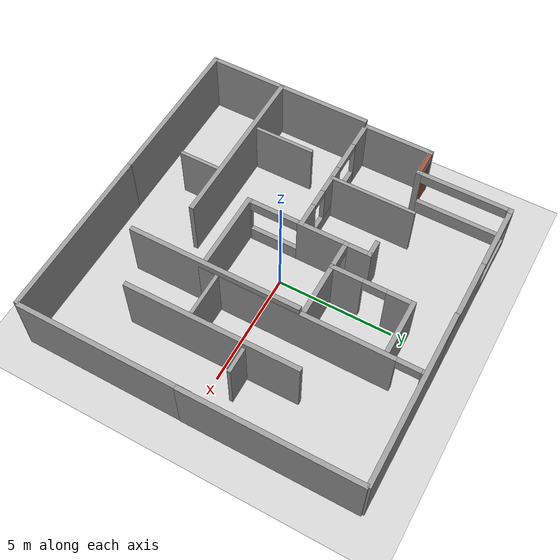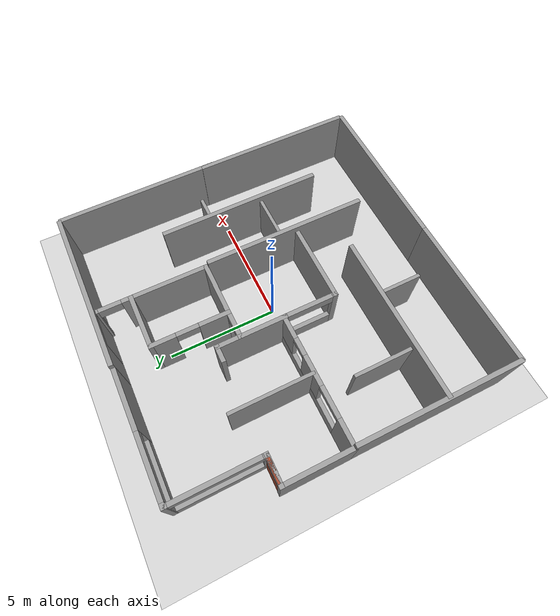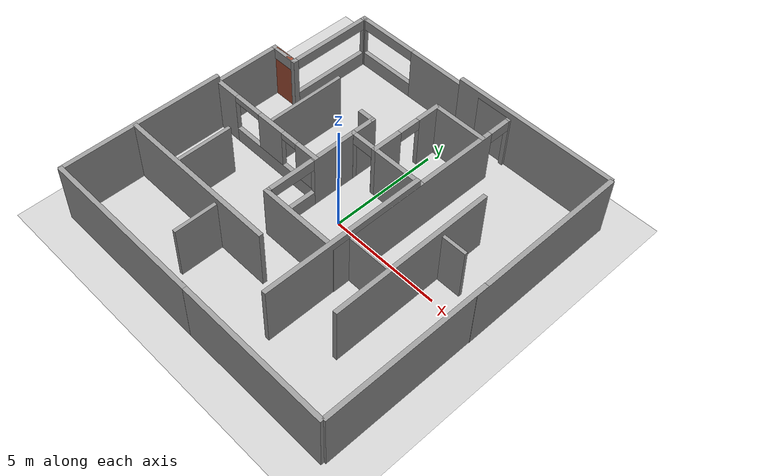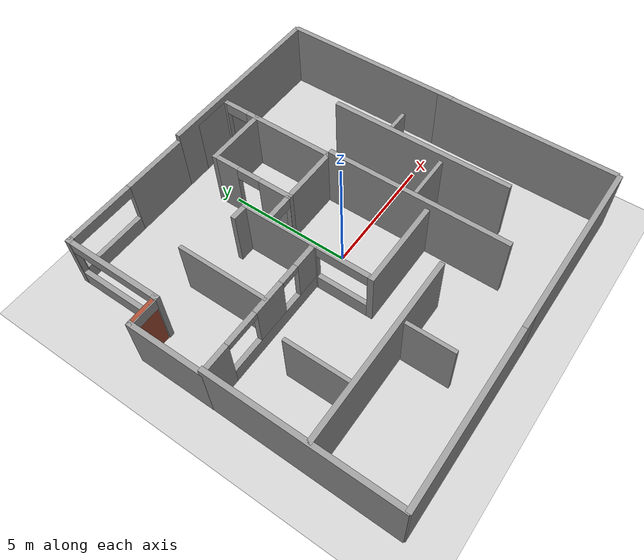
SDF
<sdf version="1.6">
 <world name="GrannyAnnie">
  <light name="sun" type="directional">
   <pose>0 0 10 0 -0 0</pose>
   <diffuse>0.8 0.8 0.8 1</diffuse>
   <specular>0.2 0.2 0.2 1</specular>
   <attenuation>
    <range>1000</range>
    <constant>0.9</constant>
    <linear>0.01</linear>
    <quadratic>0.001</quadratic>
   </attenuation>
   <direction>-0.5 0.1 -0.9</direction>
  </light>
  <model name="ground_plane">
   <static>1</static>
   <link name="link">
    <collision name="collision">
     <geometry><plane><normal>0 0 1</normal><size>100 100</size></plane></geometry>
     <surface><friction><ode><mu>100</mu><mu2>50</mu2></ode></friction></surface>
    </collision>
    <visual name="visual">
     <cast_shadows>0</cast_shadows>
     <geometry><plane><normal>0 0 1</normal><size>100 100</size></plane></geometry>
     <material>
      <script><uri>file://media/materials/scripts/gazebo.material</uri><name>Gazebo/Grey</name></script>
     </material>
    </visual>
    <velocity_decay><linear>0</linear><angular>0</angular></velocity_decay>
   </link>
  </model>
  <physics name="default_physics" default="0" type="ode">
   <max_step_size>0.01</max_step_size>
   <real_time_factor>1</real_time_factor>
   <real_time_update_rate>100</real_time_update_rate>
  </physics>
  <scene><ambient>0.4 0.4 0.4 1</ambient><background>0.7 0.7 0.7 1</background><shadows>1</shadows></scene>
  <model name="RoCKIn@Home">
   <link name="Wall_12">
    <collision name="Wall_12_Collision">
     <geometry><box><size>2.6 0.2 2.5</size></box></geometry>
     <pose>0 0 1.25 0 -0 0</pose>
    </collision>
    <visual name="Wall_12_Visual">
     <pose>0 0 1.25 0 -0 0</pose>
     <geometry><box><size>2.6 0.2 2.5</size></box></geometry>
     <material>
      <script><uri>file://media/materials/scripts/gazebo.material</uri><name>Gazebo/Grey</name></script>
     </material>
    </visual>
    <velocity_decay><linear>0</linear><angular>0</angular></velocity_decay>
    <pose>7.8 1.205 0 0 -0 1.5708</pose>
   </link>
   <link name="Wall_14">
    <pose>6.0996 2.4048 0 0 -0 3.14159</pose>
    <visual name="Wall_14_Visual_0">
     <pose>-1.20789 0 1.25 0 -0 0</pose>
     <geometry><box><size>1.18422 0.2 2.5</size></box></geometry>
     <material>
      <script><uri>file://media/materials/scripts/gazebo.material</uri><name>Gazebo/Grey</name></script>
     </material>
    </visual>
    <collision name="Wall_14_Collision_0">
     <geometry><box><size>1.18422 0.2 2.5</size></box></geometry>
     <pose>-1.20789 0 1.25 0 -0 0</pose>
    </collision>
    <visual name="Wall_14_Visual_1">
     <pose>1.09211 0 1.25 0 -0 0</pose>
     <geometry><box><size>1.41579 0.2 2.5</size></box></geometry>
     <material>
      <script><uri>file://media/materials/scripts/gazebo.material</uri><name>Gazebo/Grey</name></script>
     </material>
    </visual>
    <collision name="Wall_14_Collision_1">
     <geometry><box><size>1.41579 0.2 2.5</size></box></geometry>
     <pose>1.09211 0 1.25 0 -0 0</pose>
    </collision>
    <visual name="Wall_14_Visual_2">
     <pose>-0.115785 0 2.25 0 -0 0</pose>
     <geometry><box><size>1 0.2 0.5</size></box></geometry>
     <material>
      <script><uri>file://media/materials/scripts/gazebo.material</uri><name>Gazebo/Grey</name></script>
     </material>
    </visual>
    <collision name="Wall_14_Collision_2">
     <geometry><box><size>1 0.2 0.5</size></box></geometry>
     <pose>-0.115785 0 2.25 0 -0 0</pose>
    </collision>
    <velocity_decay><linear>0</linear><angular>0</angular></velocity_decay>
   </link>
   <link name="Wall_16">
    <collision name="Wall_16_Collision">
     <geometry><box><size>2.60492 0.2 2.5</size></box></geometry>
     <pose>0 0 1.25 0 -0 0</pose>
    </collision>
    <visual name="Wall_16_Visual">
     <pose>0 0 1.25 0 -0 0</pose>
     <geometry><box><size>2.60492 0.2 2.5</size></box></geometry>
     <material>
      <script><uri>file://media/materials/scripts/gazebo.material</uri><name>Gazebo/Grey</name></script>
     </material>
    </visual>
    <velocity_decay><linear>0</linear><angular>0</angular></velocity_decay>
    <pose>4.39903 1.20277 0 0 -0 1.5708</pose>
   </link>
   <link name="Wall_18">
    <collision name="Wall_18_Collision">
     <geometry><box><size>3.8 0.2 2.5</size></box></geometry>
     <pose>0 0 1.25 0 -0 0</pose>
    </collision>
    <visual name="Wall_18_Visual">
     <pose>0 0 1.25 0 -0 0</pose>
     <geometry><box><size>3.8 0.2 2.5</size></box></geometry>
     <material>
      <script><uri>file://media/materials/scripts/gazebo.material</uri><name>Gazebo/Grey</name></script>
     </material>
    </visual>
    <velocity_decay><linear>0</linear><angular>0</angular></velocity_decay>
    <pose>0.024876 1.80003 0 0 -0 1.5708</pose>
   </link>
   <link name="Wall_2">
    <pose>4.7266 0 0 0 -0 0</pose>
    <visual name="Wall_2_Visual_0">
     <pose>-0.649274 0 1.25 0 -0 0</pose>
     <geometry><box><size>8.30145 0.2 2.5</size></box></geometry>
     <material>
      <script><uri>file://media/materials/scripts/gazebo.material</uri><name>Gazebo/Grey</name></script>
     </material>
    </visual>
    <collision name="Wall_2_Collision_0">
     <geometry><box><size>8.30145 0.2 2.5</size></box></geometry>
     <pose>-0.649274 0 1.25 0 -0 0</pose>
    </collision>
    <visual name="Wall_2_Visual_1">
     <pose>4.65073 0 1.25 0 -0 0</pose>
     <geometry><box><size>0.298547 0.2 2.5</size></box></geometry>
     <material>
      <script><uri>file://media/materials/scripts/gazebo.material</uri><name>Gazebo/Grey</name></script>
     </material>
    </visual>
    <collision name="Wall_2_Collision_1">
     <geometry><box><size>0.298547 0.2 2.5</size></box></geometry>
     <pose>4.65073 0 1.25 0 -0 0</pose>
    </collision>
    <visual name="Wall_2_Visual_2">
     <pose>4.00145 0 2.25 0 -0 0</pose>
     <geometry><box><size>1 0.2 0.5</size></box></geometry>
     <material>
      <script><uri>file://media/materials/scripts/gazebo.material</uri><name>Gazebo/Grey</name></script>
     </material>
    </visual>
    <collision name="Wall_2_Collision_2">
     <geometry><box><size>1 0.2 0.5</size></box></geometry>
     <pose>4.00145 0 2.25 0 -0 0</pose>
    </collision>
    <velocity_decay><linear>0</linear><angular>0</angular></velocity_decay>
   </link>
   <link name="Wall_20">
    <pose>2.72456 3.60059 0 0 -0 0</pose>
    <visual name="Wall_20_Visual_0">
     <pose>-2.67396 0 1.25 0 -0 0</pose>
     <geometry><box><size>0.251208 0.2 2.5</size></box></geometry>
     <material>
      <script><uri>file://media/materials/scripts/gazebo.material</uri><name>Gazebo/Grey</name></script>
     </material>
    </visual>
    <collision name="Wall_20_Collision_0">
     <geometry><box><size>0.251208 0.2 2.5</size></box></geometry>
     <pose>-2.67396 0 1.25 0 -0 0</pose>
    </collision>
    <visual name="Wall_20_Visual_1">
     <pose>1.1766 0 1.25 0 -0 0</pose>
     <geometry><box><size>3.24591 0.2 2.5</size></box></geometry>
     <material>
      <script><uri>file://media/materials/scripts/gazebo.material</uri><name>Gazebo/Grey</name></script>
     </material>
    </visual>
    <collision name="Wall_20_Collision_1">
     <geometry><box><size>3.24591 0.2 2.5</size></box></geometry>
     <pose>1.1766 0 1.25 0 -0 0</pose>
    </collision>
    <visual name="Wall_20_Visual_2">
     <pose>-1.49735 0 2.25 0 -0 0</pose>
     <geometry><box><size>2.102 0.2 0.5</size></box></geometry>
     <material>
      <script><uri>file://media/materials/scripts/gazebo.material</uri><name>Gazebo/Grey</name></script>
     </material>
    </visual>
    <collision name="Wall_20_Collision_2">
     <geometry><box><size>2.102 0.2 0.5</size></box></geometry>
     <pose>-1.49735 0 2.25 0 -0 0</pose>
    </collision>
    <visual name="Wall_20_Visual_3">
     <pose>-1.49735 0 0.35 0 -0 0</pose>
     <geometry><box><size>2.102 0.2 0.7</size></box></geometry>
     <material>
      <script><uri>file://media/materials/scripts/gazebo.material</uri><name>Gazebo/Grey</name></script>
     </material>
    </visual>
    <collision name="Wall_20_Collision_3">
     <geometry><box><size>2.102 0.2 0.3</size></box></geometry>
     <pose>-1.49735 0 0.35 0 -0 0</pose>
    </collision>
    <velocity_decay><linear>0</linear><angular>0</angular></velocity_decay>
   </link>
   <link name="Wall_22">
    <pose>4.39856 3.00206 0 0 -0 1.5708</pose>
    <visual name="Wall_22_Visual_0">
     <pose>-0.601085 0 1.25 0 -0 0</pose>
     <geometry><box><size>0.194709 0.2 2.5</size></box></geometry>
     <material>
      <script><uri>file://media/materials/scripts/gazebo.material</uri><name>Gazebo/Grey</name></script>
     </material>
    </visual>
    <collision name="Wall_22_Collision_0">
     <geometry><box><size>0.194709 0.2 2.5</size></box></geometry>
     <pose>-0.601085 0 1.25 0 -0 0</pose>
    </collision>
    <visual name="Wall_22_Visual_1">
     <pose>0.597355 0 1.25 0 -0 0</pose>
     <geometry><box><size>0.202171 0.2 2.5</size></box></geometry>
     <material>
      <script><uri>file://media/materials/scripts/gazebo.material</uri><name>Gazebo/Grey</name></script>
     </material>
    </visual>
    <collision name="Wall_22_Collision_1">
     <geometry><box><size>0.202171 0.2 2.5</size></box></geometry>
     <pose>0.597355 0 1.25 0 -0 0</pose>
    </collision>
    <visual name="Wall_22_Visual_2">
     <pose>-0.003731 0 2.25 0 -0 0</pose>
     <geometry><box><size>1 0.2 0.5</size></box></geometry>
     <material>
      <script><uri>file://media/materials/scripts/gazebo.material</uri><name>Gazebo/Grey</name></script>
     </material>
    </visual>
    <collision name="Wall_22_Collision_2">
     <geometry><box><size>1 0.2 0.5</size></box></geometry>
     <pose>-0.003731 0 2.25 0 -0 0</pose>
    </collision>
    <velocity_decay><linear>0</linear><angular>0</angular></velocity_decay>
   </link>
   <link name="Wall_24">
    <pose>7.42703 8.20242 0 0 -0 3.14159</pose>
    <visual name="Wall_24_Visual_0">
     <pose>-1.97924 0 1.25 0 -0 0</pose>
     <geometry><box><size>0.241529 0.2 2.5</size></box></geometry>
     <material>
      <script><uri>file://media/materials/scripts/gazebo.material</uri><name>Gazebo/Grey</name></script>
     </material>
    </visual>
    <collision name="Wall_24_Collision_0">
     <geometry><box><size>0.241529 0.2 2.5</size></box></geometry>
     <pose>-1.97924 0 1.25 0 -0 0</pose>
    </collision>
    <visual name="Wall_24_Visual_1">
     <pose>1.97395 0 1.25 0 -0 0</pose>
     <geometry><box><size>0.252091 0.2 2.5</size></box></geometry>
     <material>
      <script><uri>file://media/materials/scripts/gazebo.material</uri><name>Gazebo/Grey</name></script>
     </material>
    </visual>
    <collision name="Wall_24_Collision_1">
     <geometry><box><size>0.252091 0.2 2.5</size></box></geometry>
     <pose>1.97395 0 1.25 0 -0 0</pose>
    </collision>
    <visual name="Wall_24_Visual_2">
     <pose>-0.005281 0 2.25 0 -0 0</pose>
     <geometry><box><size>3.70638 0.2 0.5</size></box></geometry>
     <material>
      <script><uri>file://media/materials/scripts/gazebo.material</uri><name>Gazebo/Grey</name></script>
     </material>
    </visual>
    <collision name="Wall_24_Collision_2">
     <geometry><box><size>3.70638 0.2 0.5</size></box></geometry>
     <pose>-0.005281 0 2.25 0 -0 0</pose>
    </collision>
    <visual name="Wall_24_Visual_3">
     <pose>-0.005281 0 0.35 0 -0 0</pose>
     <geometry><box><size>3.70638 0.2 0.7</size></box></geometry>
     <material>
      <script><uri>file://media/materials/scripts/gazebo.material</uri><name>Gazebo/Grey</name></script>
     </material>
    </visual>
    <collision name="Wall_24_Collision_3">
     <geometry><box><size>3.70638 0.2 0.7</size></box></geometry>
     <pose>-0.005281 0 0.35 0 -0 0</pose>
    </collision>
    <velocity_decay><linear>0</linear><angular>0</angular></velocity_decay>
   </link>
   <link name="Wall_28">
    <collision name="Wall_28_Collision">
     <geometry><box><size>3.2 0.2 2.5</size></box></geometry>
     <pose>0 0 1.25 0 -0 0</pose>
    </collision>
    <visual name="Wall_28_Visual">
     <pose>0 0 1.25 0 -0 0</pose>
     <geometry><box><size>3.2 0.2 2.5</size></box></geometry>
     <material>
      <script><uri>file://media/materials/scripts/gazebo.material</uri><name>Gazebo/Grey</name></script>
     </material>
    </visual>
    <velocity_decay><linear>0</linear><angular>0</angular></velocity_decay>
    <pose>3.92571 9.40229 0 0 -0 3.14159</pose>
   </link>
   <link name="Wall_30">
    <pose>2.42541 6.50159 0 0 0 -1.5708</pose>
    <visual name="Wall_30_Visual_0">
     <pose>-2.363 0 1.25 0 -0 0</pose>
     <geometry><box><size>1.27269 0.2 2.5</size></box></geometry>
     <material>
      <script><uri>file://media/materials/scripts/gazebo.material</uri><name>Gazebo/Grey</name></script>
     </material>
    </visual>
    <collision name="Wall_30_Collision_0">
     <geometry><box><size>1.27269 0.2 2.5</size></box></geometry>
     <pose>-2.363 0 1.25 0 -0 0</pose>
    </collision>
    <visual name="Wall_30_Visual_1">
     <pose>0.636346 0 0.35 0 -0 0</pose>
     <geometry><box><size>4.726 0.2 0.7</size></box></geometry>
     <material>
      <script><uri>file://media/materials/scripts/gazebo.material</uri><name>Gazebo/Grey</name></script>
     </material>
    </visual>
    <collision name="Wall_30_Collision_1">
     <geometry><box><size>4.726 0.2 0.7</size></box></geometry>
     <pose>0.636346 0 0.35 0 -0 0</pose>
    </collision>
    <visual name="Wall_30_Visual_2">
     <pose>0.36359 0 1.6 0 -0 0</pose>
     <geometry><box><size>1.38049 0.2 1.8</size></box></geometry>
     <material>
      <script><uri>file://media/materials/scripts/gazebo.material</uri><name>Gazebo/Grey</name></script>
     </material>
    </visual>
    <collision name="Wall_30_Collision_2">
     <geometry><box><size>1.38049 0.2 1.8</size></box></geometry>
     <pose>0.36359 0 1.6 0 -0 0</pose>
    </collision>
    <visual name="Wall_30_Visual_3">
     <pose>2.42659 0 1.6 0 -0 0</pose>
     <geometry><box><size>1.14551 0.2 1.8</size></box></geometry>
     <material>
      <script><uri>file://media/materials/scripts/gazebo.material</uri><name>Gazebo/Grey</name></script>
     </material>
    </visual>
    <collision name="Wall_30_Collision_3">
     <geometry><box><size>1.14551 0.2 1.8</size></box></geometry>
     <pose>2.42659 0 1.6 0 -0 0</pose>
    </collision>
    <visual name="Wall_30_Visual_4">
     <pose>-1.02665 0 2.35 0 -0 0</pose>
     <geometry><box><size>1.4 0.2 0.3</size></box></geometry>
     <material>
      <script><uri>file://media/materials/scripts/gazebo.material</uri><name>Gazebo/Grey</name></script>
     </material>
    </visual>
    <collision name="Wall_30_Collision_4">
     <geometry><box><size>1.4 0.2 0.3</size></box></geometry>
     <pose>-1.02665 0 2.35 0 -0 0</pose>
    </collision>
    <visual name="Wall_30_Visual_5">
     <pose>1.45383 0 2.35 0 -0 0</pose>
     <geometry><box><size>0.8 0.2 0.3</size></box></geometry>
     <material>
      <script><uri>file://media/materials/scripts/gazebo.material</uri><name>Gazebo/Grey</name></script>
     </material>
    </visual>
    <collision name="Wall_30_Collision_5">
     <geometry><box><size>0.8 0.2 0.3</size></box></geometry>
     <pose>1.45383 0 2.35 0 -0 0</pose>
    </collision>
    <velocity_decay><linear>0</linear><angular>0</angular></velocity_decay>
   </link>
   <link name="Wall_32">
    <pose>5.42654 8.80216 0 0 0 -1.5708</pose>
    <visual name="Wall_32_Visual_0">
     <pose>-0.599775 0 1.25 0 -0 0</pose>
     <geometry><box><size>0.199231 0.2 2.5</size></box></geometry>
     <material>
      <script><uri>file://media/materials/scripts/gazebo.material</uri><name>Gazebo/Grey</name></script>
     </material>
    </visual>
    <collision name="Wall_32_Collision_0">
     <geometry><box><size>0.199231 0.2 2.5</size></box></geometry>
     <pose>-0.599775 0 1.25 0 -0 0</pose>
    </collision>
    <visual name="Wall_32_Visual_1">
     <pose>0.599615 0 1.25 0 -0 0</pose>
     <geometry><box><size>0.199549 0.2 2.5</size></box></geometry>
     <material>
      <script><uri>file://media/materials/scripts/gazebo.material</uri><name>Gazebo/Grey</name></script>
     </material>
    </visual>
    <collision name="Wall_32_Collision_1">
     <geometry><box><size>0.199549 0.2 2.5</size></box></geometry>
     <pose>0.599615 0 1.25 0 -0 0</pose>
    </collision>
    <visual name="Wall_32_Visual_2">
     <pose>-0.000159 0 2.25 0 -0 0</pose>
     <geometry><box><size>1 0.2 0.5</size></box></geometry>
     <material>
      <script><uri>file://media/materials/scripts/gazebo.material</uri><name>Gazebo/Grey</name></script>
     </material>
    </visual>
    <collision name="Wall_32_Collision_2">
     <geometry><box><size>1 0.2 0.5</size></box></geometry>
     <pose>-0.000159 0 2.25 0 -0 0</pose>
    </collision>
    <velocity_decay><linear>0</linear><angular>0</angular></velocity_decay>
   </link>
   <link name="Wall_35">
    <collision name="Wall_35_Collision">
     <geometry><box><size>0.8 0.2 2.5</size></box></geometry>
     <pose>0 0 1.25 0 -0 0</pose>
    </collision>
    <visual name="Wall_35_Visual">
     <pose>0 0 1.25 0 -0 0</pose>
     <geometry><box><size>0.8 0.2 2.5</size></box></geometry>
     <material>
      <script><uri>file://media/materials/scripts/gazebo.material</uri><name>Gazebo/Grey</name></script>
     </material>
    </visual>
    <velocity_decay><linear>0</linear><angular>0</angular></velocity_decay>
    <pose>5.42451 3.90082 0 0 -0 1.5708</pose>
   </link>
   <link name="Wall_8">
    <pose>9.42875 4.1026 0 0 -0 1.5708</pose>
    <visual name="Wall_8_Visual_0">
     <pose>-1.48935 0 1.25 0 -0 0</pose>
     <geometry><box><size>5.42201 0.2 2.5</size></box></geometry>
     <material>
      <script><uri>file://media/materials/scripts/gazebo.material</uri><name>Gazebo/Grey</name></script>
     </material>
    </visual>
    <collision name="Wall_8_Collision_0">
     <geometry><box><size>5.42201 0.2 2.5</size></box></geometry>
     <pose>-1.48935 0 1.25 0 -0 0</pose>
    </collision>
    <visual name="Wall_8_Visual_1">
     <pose>4.07465 0 1.25 0 -0 0</pose>
     <geometry><box><size>0.251416 0.2 2.5</size></box></geometry>
     <material>
      <script><uri>file://media/materials/scripts/gazebo.material</uri><name>Gazebo/Grey</name></script>
     </material>
    </visual>
    <collision name="Wall_8_Collision_1">
     <geometry><box><size>0.251416 0.2 2.5</size></box></geometry>
     <pose>4.07465 0 1.25 0 -0 0</pose>
    </collision>
    <visual name="Wall_8_Visual_2">
     <pose>2.5853 0 2.25 0 -0 0</pose>
     <geometry><box><size>2.72728 0.2 0.5</size></box></geometry>
     <material>
      <script><uri>file://media/materials/scripts/gazebo.material</uri><name>Gazebo/Grey</name></script>
     </material>
    </visual>
    <collision name="Wall_8_Collision_2">
     <geometry><box><size>2.72728 0.2 0.5</size></box></geometry>
     <pose>2.5853 0 2.25 0 -0 0</pose>
    </collision>
    <visual name="Wall_8_Visual_3">
     <pose>2.5853 0 0.35 0 -0 0</pose>
     <geometry><box><size>2.72728 0.2 0.7</size></box></geometry>
     <material>
      <script><uri>file://media/materials/scripts/gazebo.material</uri><name>Gazebo/Grey</name></script>
     </material>
    </visual>
    <collision name="Wall_8_Collision_3">
     <geometry><box><size>2.72728 0.2 0.7</size></box></geometry>
     <pose>2.5853 0 0.35 0 -0 0</pose>
    </collision>
    <velocity_decay><linear>0</linear><angular>0</angular></velocity_decay>
   </link>
   <static>1</static>
   <pose>2.1556 -2.27801 0 0 -0 1.57</pose>
  </model>
  <spherical_coordinates>
   <surface_model>EARTH_WGS84</surface_model>
   <latitude_deg>0</latitude_deg>
   <longitude_deg>0</longitude_deg>
   <elevation>0</elevation>
   <heading_deg>0</heading_deg>
  </spherical_coordinates>
  <model name="grey_wall_0">
   <static>1</static>
   <link name="link">
    <pose>0 0 1.4 0 -0 0</pose>
    <collision name="collision"><geometry><box><size>7.5 0.2 2.8</size></box></geometry></collision>
    <visual name="visual">
     <cast_shadows>0</cast_shadows>
     <geometry><box><size>7.5 0.2 2.8</size></box></geometry>
     <material>
      <script>
       <uri>model://grey_wall/materials/scripts</uri>
       <uri>model://grey_wall/materials/textures</uri>
       <name>vrc/grey_wall</name>
      </script>
     </material>
    </visual>
    <velocity_decay><linear>0</linear><angular>0</angular></velocity_decay>
   </link>
   <pose>-7.25571 -3.5819 0 0 0 -1.57522</pose>
  </model>
  <model name="grey_wall_1">
   <static>1</static>
   <link name="link">
    <pose>0 0 1.4 0 -0 0</pose>
    <collision name="collision"><geometry><box><size>7.5 0.2 2.8</size></box></geometry></collision>
    <visual name="visual">
     <cast_shadows>0</cast_shadows>
     <geometry><box><size>7.5 0.2 2.8</size></box></geometry>
     <material>
      <script>
       <uri>model://grey_wall/materials/scripts</uri>
       <uri>model://grey_wall/materials/textures</uri>
       <name>vrc/grey_wall</name>
      </script>
     </material>
    </visual>
    <velocity_decay><linear>0</linear><angular>0</angular></velocity_decay>
   </link>
   <pose>3.27943 7.15202 0 0 -0 0</pose>
  </model>
  <model name="grey_wall_2">
   <static>1</static>
   <link name="link">
    <pose>0 0 1.4 0 -0 0</pose>
    <collision name="collision"><geometry><box><size>7.5 0.2 2.8</size></box></geometry></collision>
    <visual name="visual">
     <cast_shadows>0</cast_shadows>
     <geometry><box><size>7.5 0.2 2.8</size></box></geometry>
     <material>
      <script>
       <uri>model://grey_wall/materials/scripts</uri>
       <uri>model://grey_wall/materials/textures</uri>
       <name>vrc/grey_wall</name>
      </script>
     </material>
    </visual>
    <velocity_decay><linear>0</linear><angular>0</angular></velocity_decay>
   </link>
   <pose>-3.57864 -7.27256 0 0 -0 0</pose>
  </model>
  <model name="grey_wall_3">
   <static>1</static>
   <link name="link">
    <pose>0 0 1.4 0 -0 0</pose>
    <collision name="collision"><geometry><box><size>7.5 0.2 2.8</size></box></geometry></collision>
    <visual name="visual">
     <cast_shadows>0</cast_shadows>
     <geometry><box><size>7.5 0.2 2.8</size></box></geometry>
     <material>
      <script>
       <uri>model://grey_wall/materials/scripts</uri>
       <uri>model://grey_wall/materials/textures</uri>
       <name>vrc/grey_wall</name>
      </script>
     </material>
    </visual>
    <velocity_decay><linear>0</linear><angular>0</angular></velocity_decay>
   </link>
   <pose>7.02581 3.41596 0 0 0 -1.566</pose>
  </model>
  <model name="grey_wall_4">
   <static>1</static>
   <link name="link">
    <pose>0 0 1.4 0 -0 0</pose>
    <collision name="collision"><geometry><box><size>7.5 0.2 2.8</size></box></geometry></collision>
    <visual name="visual">
     <cast_shadows>0</cast_shadows>
     <geometry><box><size>7.5 0.2 2.8</size></box></geometry>
     <material>
      <script>
       <uri>model://grey_wall/materials/scripts</uri>
       <uri>model://grey_wall/materials/textures</uri>
       <name>vrc/grey_wall</name>
      </script>
     </material>
    </visual>
    <velocity_decay><linear>0</linear><angular>0</angular></velocity_decay>
   </link>
   <pose>7.03023 -3.4783 0 0 0 -1.5708</pose>
  </model>
  <model name="grey_wall_5">
   <static>1</static>
   <link name="link">
    <pose>0 0 1.4 0 -0 0</pose>
    <collision name="collision"><geometry><box><size>7.5 0.2 2.8</size></box></geometry></collision>
    <visual name="visual">
     <cast_shadows>0</cast_shadows>
     <geometry><box><size>7.5 0.2 2.8</size></box></geometry>
     <material>
      <script>
       <uri>model://grey_wall/materials/scripts</uri>
       <uri>model://grey_wall/materials/textures</uri>
       <name>vrc/grey_wall</name>
      </script>
     </material>
    </visual>
    <velocity_decay><linear>0</linear><angular>0</angular></velocity_decay>
   </link>
   <pose>3.29916 -7.27083 0 0 -0 0</pose>
  </model>
  <model name="grey_wall_6">
   <static>1</static>
   <link name="link">
    <pose>0 0 1.4 0 -0 0</pose>
    <collision name="collision"><geometry><box><size>7.5 0.2 2.8</size></box></geometry></collision>
    <visual name="visual">
     <cast_shadows>0</cast_shadows>
     <geometry><box><size>7.5 0.2 2.8</size></box></geometry>
     <material>
      <script>
       <uri>model://grey_wall/materials/scripts</uri>
       <uri>model://grey_wall/materials/textures</uri>
       <name>vrc/grey_wall</name>
      </script>
     </material>
    </visual>
    <velocity_decay><linear>0</linear><angular>0</angular></velocity_decay>
   </link>
   <pose>2.13991 -1.7222 0 0 -0 1.5708</pose>
  </model>
  <gravity>0 0 -9.8</gravity>
  <magnetic_field>6e-06 2.3e-05 -4.2e-05</magnetic_field>
  <atmosphere type="adiabatic"/>
  <model name="grey_wall">
   <static>1</static>
   <link name="link">
    <pose>0 0 1.4 0 -0 0</pose>
    <collision name="collision"><geometry><box><size>7.5 0.2 2.8</size></box></geometry></collision>
    <visual name="visual">
     <cast_shadows>0</cast_shadows>
     <geometry><box><size>7.5 0.2 2.8</size></box></geometry>
     <material>
      <script>
       <uri>model://grey_wall/materials/scripts</uri>
       <uri>model://grey_wall/materials/textures</uri>
       <name>vrc/grey_wall</name>
      </script>
     </material>
    </visual>
   </link>
   <pose>-3.54137 -3.91303 0 0 -0 0</pose>
  </model>
  <model name="grey_wall_7">
   <static>1</static>
   <link name="link">
    <pose>0 0 1.4 0 -0 0</pose>
    <collision name="collision"><geometry><box><size>7.5 0.2 2.8</size></box></geometry></collision>
    <visual name="visual">
     <cast_shadows>0</cast_shadows>
     <geometry><box><size>7.5 0.2 2.8</size></box></geometry>
     <material>
      <script>
       <uri>model://grey_wall/materials/scripts</uri>
       <uri>model://grey_wall/materials/textures</uri>
       <name>vrc/grey_wall</name>
      </script>
     </material>
    </visual>
   </link>
   <pose>4.34809 -0.522236 0 0 -0 1.57686</pose>
  </model>
  <model name="Untitled">
   <pose>0.271034 -1.02621 0 0 -0 0</pose>
   <link name="Wall_1">
    <collision name="Wall_1_Collision">
     <geometry><box><size>2.25 0.15 2.5</size></box></geometry>
     <pose>0 0 1.25 0 -0 0</pose>
    </collision>
    <visual name="Wall_1_Visual">
     <pose>0 0 1.25 0 -0 0</pose>
     <geometry><box><size>2.25 0.15 2.5</size></box></geometry>
     <material>
      <script><uri>file://media/materials/scripts/gazebo.material</uri><name>Gazebo/Grey</name></script>
      <ambient>1 1 1 1</ambient>
     </material>
    </visual>
    <pose>2.92877 -0.483791 0 0 -0 0</pose>
   </link>
   <link name="Wall_11">
    <collision name="Wall_11_Collision">
     <geometry><box><size>3.75 0.15 2.5</size></box></geometry>
     <pose>0 0 1.25 0 -0 0</pose>
    </collision>
    <visual name="Wall_11_Visual">
     <pose>0 0 1.25 0 -0 0</pose>
     <geometry><box><size>3.75 0.15 2.5</size></box></geometry>
     <material>
      <script><uri>file://media/materials/scripts/gazebo.material</uri><name>Gazebo/Grey</name></script>
      <ambient>1 1 1 1</ambient>
     </material>
    </visual>
    <pose>-4.35383 3.02634 0 0 0 -1.5708</pose>
   </link>
   <link name="Wall_5">
    <collision name="Wall_5_Collision">
     <geometry><box><size>2 0.15 2.5</size></box></geometry>
     <pose>0 0 1.25 0 -0 0</pose>
    </collision>
    <visual name="Wall_5_Visual">
     <pose>0 0 1.25 0 -0 0</pose>
     <geometry><box><size>2 0.15 2.5</size></box></geometry>
     <material>
      <script><uri>file://media/materials/scripts/gazebo.material</uri><name>Gazebo/Grey</name></script>
      <ambient>1 1 1 1</ambient>
     </material>
    </visual>
    <pose>-2.50868 -3.90134 0 0 0 -1.5708</pose>
   </link>
   <link name="Wall_7">
    <collision name="Wall_7_Collision">
     <geometry><box><size>1.25 0.15 2.5</size></box></geometry>
     <pose>0 0 1.25 0 -0 0</pose>
    </collision>
    <visual name="Wall_7_Visual">
     <pose>0 0 1.25 0 -0 0</pose>
     <geometry><box><size>1.25 0.15 2.5</size></box></geometry>
     <material>
      <script><uri>file://media/materials/scripts/gazebo.material</uri><name>Gazebo/Grey</name></script>
      <ambient>1 1 1 1</ambient>
     </material>
    </visual>
    <pose>4.62843 1.95913 0 0 -0 0</pose>
   </link>
   <link name="Wall_9">
    <collision name="Wall_9_Collision">
     <geometry><box><size>2.75 0.15 2.5</size></box></geometry>
     <pose>0 0 1.25 0 -0 0</pose>
    </collision>
    <visual name="Wall_9_Visual">
     <pose>0 0 1.25 0 -0 0</pose>
     <geometry><box><size>2.75 0.15 2.5</size></box></geometry>
     <material>
      <script><uri>file://media/materials/scripts/gazebo.material</uri><name>Gazebo/Grey</name></script>
      <ambient>1 1 1 1</ambient>
     </material>
    </visual>
    <pose>-5.17843 -1.52208 0 0 0 -1.5708</pose>
   </link>
   <static>1</static>
  </model>
  <model name="Untitled1">
   <pose>-6.6597 3.16405 0 0 -0 0</pose>
   <link name="Wall_18">
    <collision name="Wall_18_Collision">
     <geometry><box><size>1 0.15 2.5</size></box></geometry>
     <pose>0 0 1.25 0 -0 0</pose>
    </collision>
    <visual name="Wall_18_Visual">
     <pose>0 0 1.25 0 -0 0</pose>
     <geometry><box><size>1 0.15 2.5</size></box></geometry>
     <material>
      <script><uri>file://media/materials/scripts/gazebo.material</uri><name>Gazebo/Bricks</name></script>
      <ambient>1 1 1 1</ambient>
     </material>
    </visual>
   </link>
   <static>1</static>
  </model>
 </world>
</sdf>
